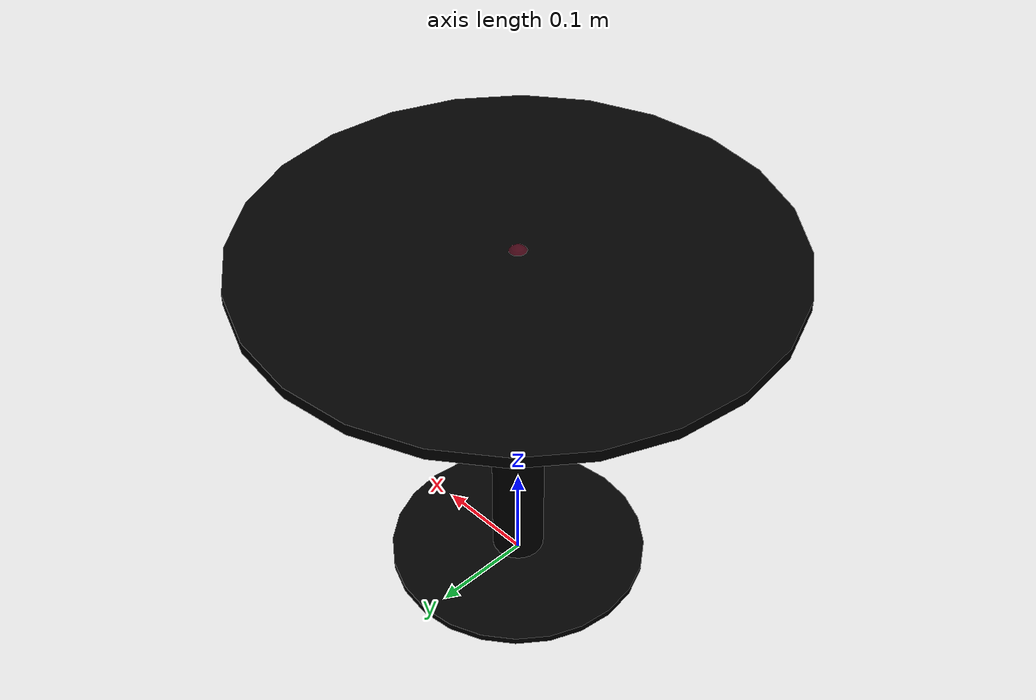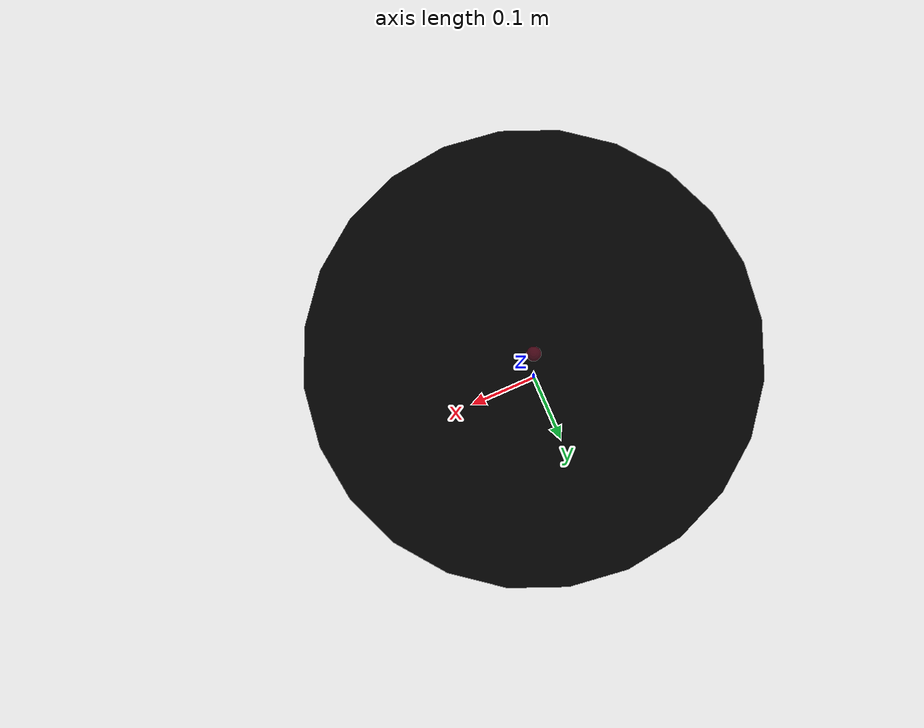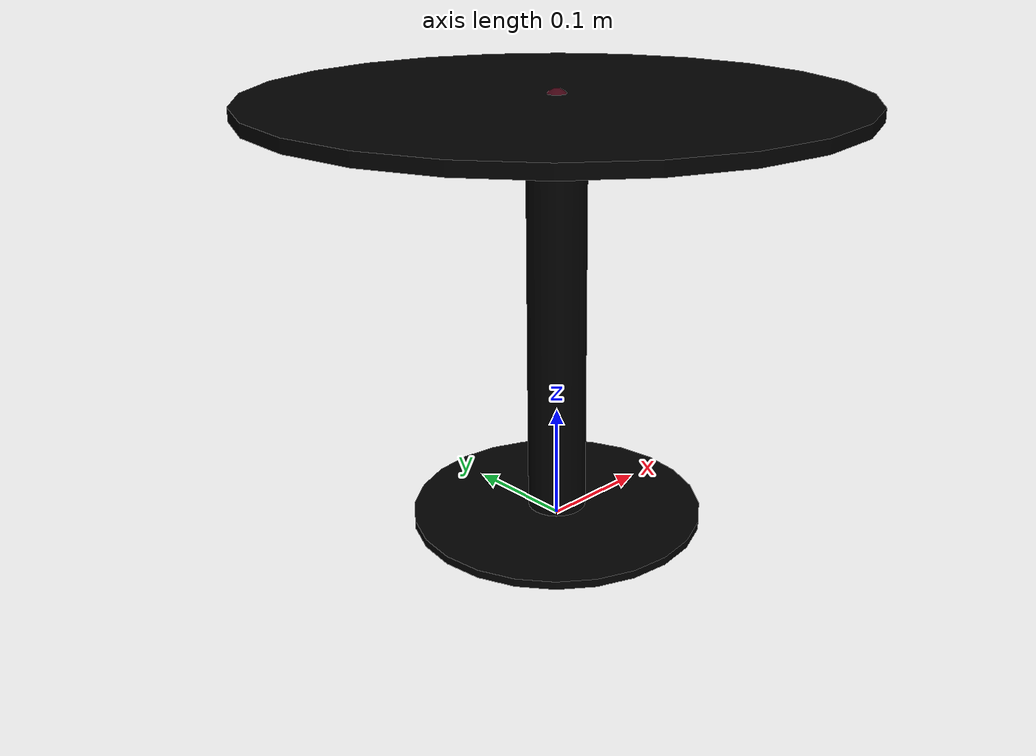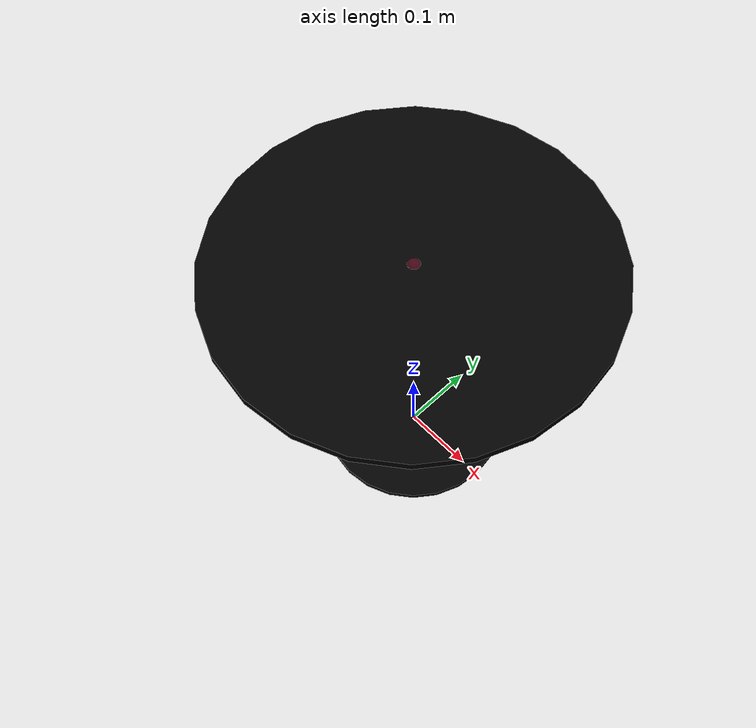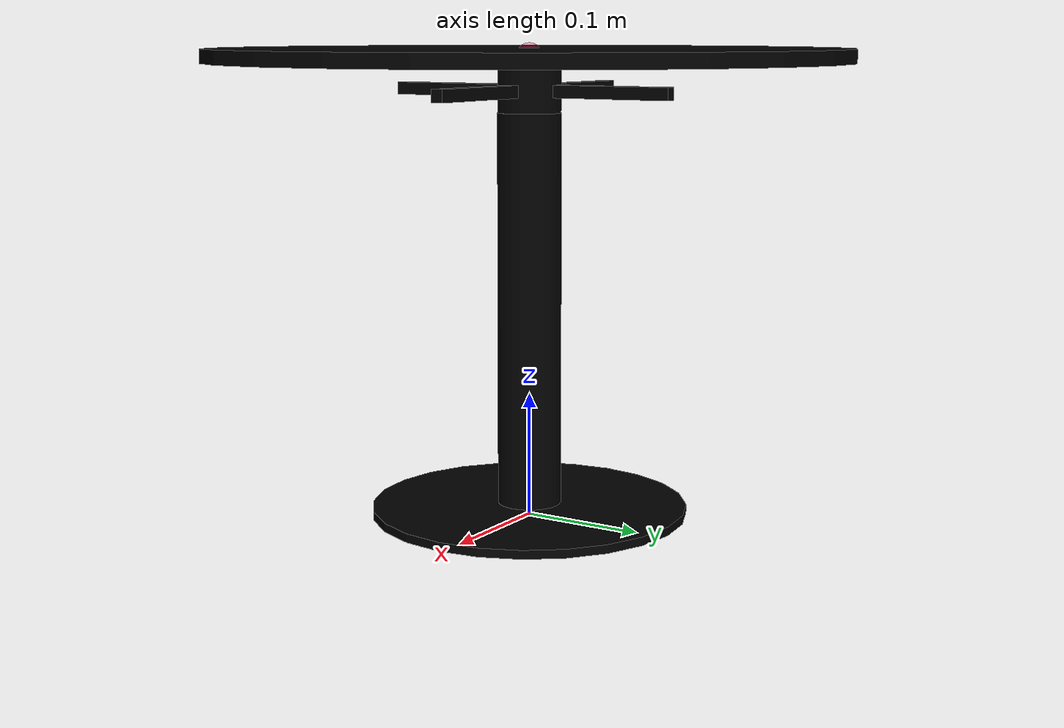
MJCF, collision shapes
<mujoco model="table_billsta_round_0189">
  <custom>
    <numeric data="-0.277193 0.164597 0.005623 -0.0 -0.995185 0.098017 0.0" name="0_part0_initpos" />
    <numeric data="-0.052777 -0.175435 0.020932 0.0 0.635549 -0.772061 0.0" name="3_part3_initpos" />
    <numeric data="0.190382 0.214882 0.003466 0.999863 -0.0 0.0 0.016557" name="2_part2_initpos" />
    <numeric data="0.220945 -0.030634 0.025543 0.707107 3e-06 -0.707107 3e-06" name="1_part1_initpos" />
  </custom>
  <asset>
    <mesh file="table_billsta_round_0189/0.stl" name="part0" scale="0.0005039999999999999 0.0005039999999999999 0.0005039999999999999" />
    <mesh file="table_billsta_round_0189/4.stl" name="part3" scale="0.0005039999999999999 0.0005039999999999999 0.0005039999999999999" />
    <mesh file="table_billsta_round_0189/2.stl" name="part2" scale="0.0005039999999999999 0.0005039999999999999 0.0005039999999999999" />
    <mesh file="table_billsta_round_0189/1.stl" name="part1" scale="0.0005039999999999999 0.0005039999999999999 0.0005039999999999999" />
  </asset>
  <worldbody><body name="combined_body" pos="0 0 0.37301999999999997" quat="1 0 0 0"><geom conaffinity="0" contype="0" density="0" mesh="part0" name="0_part0_mesh" pos="2.7215999999999998e-09 3.5783999999999996e-09 -0.0" rgba="0.82 0.71 0.55 1" type="mesh" quat="1 0 0 0" />
      <geom density="50" name="noviz_collision_0_part0_0" pos="2.7215999999999998e-09 3.5783999999999996e-09 -0.0" quat="1 0 0 0" rgba="0 0 0 0" size="0.255985884 0.0055439999999999994" solref="0.001 1" type="cylinder" />
    <site name="0_part0_horizontal_radius_site" pos="2.7215999999999998e-09 3.5783999999999996e-09 -0.0" quat="1 0 0 0" rgba="0 0 0 0" size="0.01" />
      <site name="0_part0_top_site" pos="2.7215999999999998e-09 3.5783999999999996e-09 -0.0" quat="1 0 0 0" rgba="0 0 0 0" size="0.01" />
      <site name="0_part0_bottom_site" pos="2.7215999999999998e-09 3.5783999999999996e-09 -0.0" quat="1 0 0 0" rgba="0 0 0 0" size="0.01" />
      <site name="0_part0_corner_site8" pos="2.7215999999999998e-09 3.5783999999999996e-09 -0.0" quat="1 0 0 0" rgba="0 0 0 0" size="0.01008" />
      <site name="0_part0_corner_site7" pos="2.7215999999999998e-09 3.5783999999999996e-09 -0.0" quat="1 0 0 0" rgba="0 0 0 0" size="0.01008" />
      <site name="0_part0_corner_site6" pos="2.7215999999999998e-09 3.5783999999999996e-09 -0.0" quat="1 0 0 0" rgba="0 0 0 0" size="0.01008" />
      <site name="0_part0_corner_site5" pos="2.7215999999999998e-09 3.5783999999999996e-09 -0.0" quat="1 0 0 0" rgba="0 0 0 0" size="0.01008" />
      <site name="0_part0_corner_site4" pos="2.7215999999999998e-09 3.5783999999999996e-09 -0.0" quat="1 0 0 0" rgba="0 0 0 0" size="0.01008" />
      <site name="0_part0_corner_site3" pos="2.7215999999999998e-09 3.5783999999999996e-09 -0.0" quat="1 0 0 0" rgba="0 0 0 0" size="0.01008" />
      <site name="0_part0_corner_site2" pos="2.7215999999999998e-09 3.5783999999999996e-09 -0.0" quat="1 0 0 0" rgba="0 0 0 0" size="0.01008" />
      <site name="0_part0_corner_site1" pos="2.7215999999999998e-09 3.5783999999999996e-09 -0.0" quat="1 0 0 0" rgba="0 0 0 0" size="0.01008" />
      <site name="top-connector,conn_site1" pos="2.7215999999999998e-09 3.5783999999999996e-09 -0.0" quat="1 0 0 0" rgba="0.9019 0.0980 0.2941 0.3" size="0.01" />
      <geom conaffinity="0" contype="0" density="0" mesh="part3" name="3_part3_mesh" pos="5.4431999999999996e-09 -2.52e-10 -0.028003499999999997" rgba="0.82 0.71 0.55 1" type="mesh" quat="1 0 0 0" />
      <geom density="50" name="noviz_collision_3_part3_0" pos="5.4431999999999996e-09 -2.52e-10 -0.028003499999999997" quat="1 0 0 0" rgba="0 0 0 0" size="0.025199999999999997 0.01764" solref="0.001 1" type="cylinder" />
      <geom density="50" name="noviz_collision_3_part3_1" pos="5.4431999999999996e-09 -2.52e-10 -0.028003499999999997" quat="1 0 0 0" rgba="0 0 0 0" size="0.00504 0.126 0.00504" solref="0.001 1" type="box" />
      <geom density="50" name="noviz_collision_3_part3_2" pos="5.4431999999999996e-09 -2.52e-10 -0.028003499999999997" quat="1 0 0 0" rgba="0 0 0 0" size="0.126 0.00504 0.00504" solref="0.001 1" type="box" />
    <site name="3_part3_horizontal_radius_site" pos="5.4431999999999996e-09 -2.52e-10 -0.028003499999999997" quat="1 0 0 0" rgba="0 0 0 0" size="0.01" />
      <site name="3_part3_top_site" pos="5.4431999999999996e-09 -2.52e-10 -0.028003499999999997" quat="1 0 0 0" rgba="0 0 0 0" size="0.01" />
      <site name="3_part3_bottom_site" pos="5.4431999999999996e-09 -2.52e-10 -0.028003499999999997" quat="1 0 0 0" rgba="0 0 0 0" size="0.01" />
      <site name="3_part3_corner_site8" pos="5.4431999999999996e-09 -2.52e-10 -0.028003499999999997" quat="1 0 0 0" rgba="0 0 0 0" size="0.01008" />
      <site name="3_part3_corner_site7" pos="5.4431999999999996e-09 -2.52e-10 -0.028003499999999997" quat="1 0 0 0" rgba="0 0 0 0" size="0.01008" />
      <site name="3_part3_corner_site6" pos="5.4431999999999996e-09 -2.52e-10 -0.028003499999999997" quat="1 0 0 0" rgba="0 0 0 0" size="0.01008" />
      <site name="3_part3_corner_site5" pos="5.4431999999999996e-09 -2.52e-10 -0.028003499999999997" quat="1 0 0 0" rgba="0 0 0 0" size="0.01008" />
      <site name="3_part3_corner_site4" pos="5.4431999999999996e-09 -2.52e-10 -0.028003499999999997" quat="1 0 0 0" rgba="0 0 0 0" size="0.01008" />
      <site name="3_part3_corner_site3" pos="5.4431999999999996e-09 -2.52e-10 -0.028003499999999997" quat="1 0 0 0" rgba="0 0 0 0" size="0.01008" />
      <site name="3_part3_corner_site2" pos="5.4431999999999996e-09 -2.52e-10 -0.028003499999999997" quat="1 0 0 0" rgba="0 0 0 0" size="0.01008" />
      <site name="3_part3_corner_site1" pos="5.4431999999999996e-09 -2.52e-10 -0.028003499999999997" quat="1 0 0 0" rgba="0 0 0 0" size="0.01008" />
      <site name="connector-top,conn_site1" pos="5.4431999999999996e-09 -2.52e-10 -0.028003499999999997" quat="1 0 0 0" rgba="0.9019 0.0980 0.2941 0.3" size="0.01" />
      <site name="connector-centerbar,conn_site1" pos="5.4431999999999996e-09 -2.52e-10 -0.028003499999999997" quat="1 0 0 0" rgba="0.2352 0.7058 0.2941 0.3" size="0.01" />
      <geom conaffinity="0" contype="0" density="0" mesh="part2" name="2_part2_mesh" pos="5.4431999999999996e-09 -2.52e-10 -0.3672459061488" rgba="0.82 0.71 0.55 1" type="mesh" quat="1 0 0 0" />
      <geom density="50" name="noviz_collision_2_part2_0" pos="5.4431999999999996e-09 -2.52e-10 -0.3672459061488" quat="1 0 0 0" rgba="0 0 0 0" size="0.128016 0.0035279999999999995" solref="0.001 1" type="cylinder" />
    <site name="2_part2_horizontal_radius_site" pos="5.4431999999999996e-09 -2.52e-10 -0.3672459061488" quat="1 0 0 0" rgba="0 0 0 0" size="0.01" />
      <site name="2_part2_top_site" pos="5.4431999999999996e-09 -2.52e-10 -0.3672459061488" quat="1 0 0 0" rgba="0 0 0 0" size="0.01" />
      <site name="2_part2_bottom_site" pos="5.4431999999999996e-09 -2.52e-10 -0.3672459061488" quat="1 0 0 0" rgba="0 0 0 0" size="0.01" />
      <site name="2_part2_corner_site8" pos="5.4431999999999996e-09 -2.52e-10 -0.3672459061488" quat="1 0 0 0" rgba="0 0 0 0" size="0.01008" />
      <site name="2_part2_corner_site7" pos="5.4431999999999996e-09 -2.52e-10 -0.3672459061488" quat="1 0 0 0" rgba="0 0 0 0" size="0.01008" />
      <site name="2_part2_corner_site6" pos="5.4431999999999996e-09 -2.52e-10 -0.3672459061488" quat="1 0 0 0" rgba="0 0 0 0" size="0.01008" />
      <site name="2_part2_corner_site5" pos="5.4431999999999996e-09 -2.52e-10 -0.3672459061488" quat="1 0 0 0" rgba="0 0 0 0" size="0.01008" />
      <site name="2_part2_corner_site4" pos="5.4431999999999996e-09 -2.52e-10 -0.3672459061488" quat="1 0 0 0" rgba="0 0 0 0" size="0.01008" />
      <site name="2_part2_corner_site3" pos="5.4431999999999996e-09 -2.52e-10 -0.3672459061488" quat="1 0 0 0" rgba="0 0 0 0" size="0.01008" />
      <site name="2_part2_corner_site2" pos="5.4431999999999996e-09 -2.52e-10 -0.3672459061488" quat="1 0 0 0" rgba="0 0 0 0" size="0.01008" />
      <site name="2_part2_corner_site1" pos="5.4431999999999996e-09 -2.52e-10 -0.3672459061488" quat="1 0 0 0" rgba="0 0 0 0" size="0.01008" />
      <site name="bottom-centerbar,conn_site1" pos="5.4431999999999996e-09 -2.52e-10 -0.3672459061488" quat="1 0 0 0" rgba="1.0 0.8823 0.0980 0.3" size="0.01" />
      <geom conaffinity="0" contype="0" density="0" mesh="part1" name="1_part1_mesh" pos="3.4775999999999992e-09 8.2656e-09 -0.2040255046368" rgba="0.82 0.71 0.55 1" type="mesh" quat="1 0 0 0" />
      <geom density="50" name="noviz_collision_1_part1_0" pos="3.4775999999999992e-09 8.2656e-09 -0.2040255046368" quat="1 0 0 0" rgba="0 0 0 0" size="0.02561799744 0.15875999999999998" solref="0.001 1" type="cylinder" />
    <site name="1_part1_horizontal_radius_site" pos="3.4775999999999992e-09 8.2656e-09 -0.2040255046368" quat="1 0 0 0" rgba="0 0 0 0" size="0.01" />
      <site name="1_part1_top_site" pos="3.4775999999999992e-09 8.2656e-09 -0.2040255046368" quat="1 0 0 0" rgba="0 0 0 0" size="0.01" />
      <site name="1_part1_bottom_site" pos="3.4775999999999992e-09 8.2656e-09 -0.2040255046368" quat="1 0 0 0" rgba="0 0 0 0" size="0.01" />
      <site name="1_part1_corner_site8" pos="3.4775999999999992e-09 8.2656e-09 -0.2040255046368" quat="1 0 0 0" rgba="0 0 0 0" size="0.01008" />
      <site name="1_part1_corner_site7" pos="3.4775999999999992e-09 8.2656e-09 -0.2040255046368" quat="1 0 0 0" rgba="0 0 0 0" size="0.01008" />
      <site name="1_part1_corner_site6" pos="3.4775999999999992e-09 8.2656e-09 -0.2040255046368" quat="1 0 0 0" rgba="0 0 0 0" size="0.01008" />
      <site name="1_part1_corner_site5" pos="3.4775999999999992e-09 8.2656e-09 -0.2040255046368" quat="1 0 0 0" rgba="0 0 0 0" size="0.01008" />
      <site name="1_part1_corner_site4" pos="3.4775999999999992e-09 8.2656e-09 -0.2040255046368" quat="1 0 0 0" rgba="0 0 0 0" size="0.01008" />
      <site name="1_part1_corner_site3" pos="3.4775999999999992e-09 8.2656e-09 -0.2040255046368" quat="1 0 0 0" rgba="0 0 0 0" size="0.01008" />
      <site name="1_part1_corner_site2" pos="3.4775999999999992e-09 8.2656e-09 -0.2040255046368" quat="1 0 0 0" rgba="0 0 0 0" size="0.01008" />
      <site name="1_part1_corner_site1" pos="3.4775999999999992e-09 8.2656e-09 -0.2040255046368" quat="1 0 0 0" rgba="0 0 0 0" size="0.01008" />
      <site name="centerbar-connector,conn_site1" pos="3.4775999999999992e-09 8.2656e-09 -0.2040255046368" quat="1 0 0 0" rgba="0.2352 0.7058 0.2941 0.3" size="0.01" />
      <site name="centerbar-bottom,conn_site1" pos="3.4775999999999992e-09 8.2656e-09 -0.2040255046368" quat="1 0 0 0" rgba="1.0 0.8823 0.0980 0.3" size="0.01" />
      </body></worldbody><actuator />
  <sensor />
  <contact />
  <default />
</mujoco>
